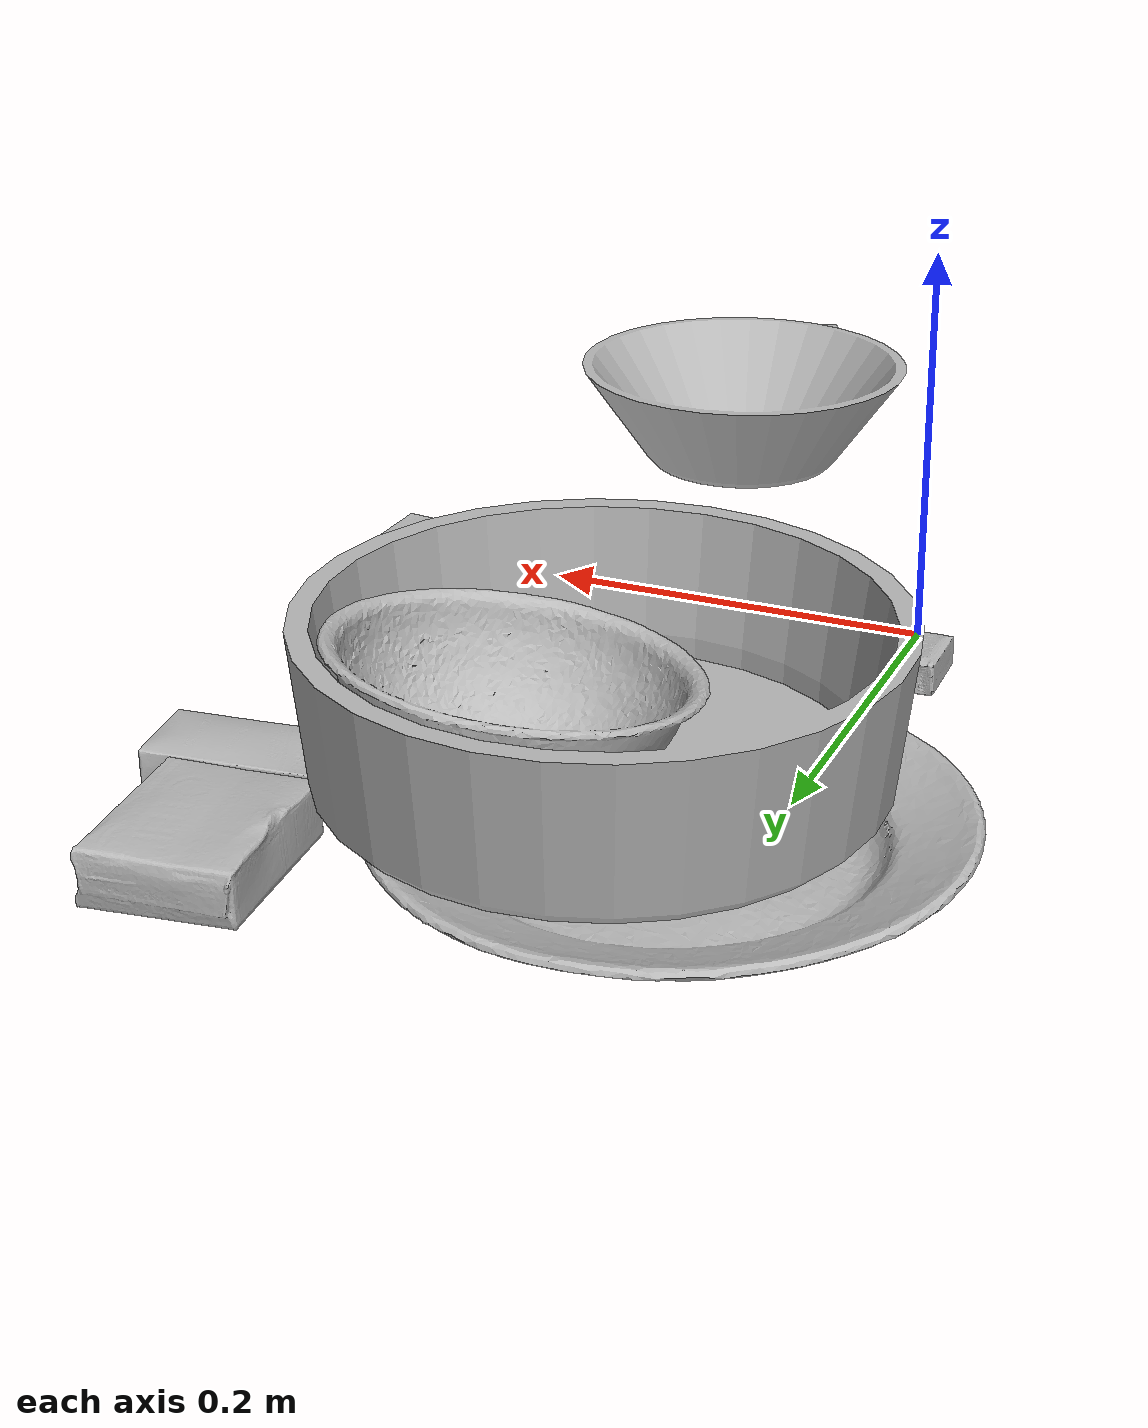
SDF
<sdf version="1.4">
  <world name="default">
    <light name="light1" type="point">
      <pose>0 0 1 0 0 0</pose>
      <diffuse>3 3 3 1</diffuse>
      <specular>3 3 3 1</specular>
    </light>
    <light name="light2" type="point">
      <pose>0 0.5 2 0 0 0</pose>
      <diffuse>1 1 1 1</diffuse>
      <specular>1 1 1 1</specular>
    </light>
    <light name="light3" type="point">
      <pose>0 0.5 2 0 0 0</pose>
      <diffuse>3 3 3 1</diffuse>
      <specular>3 3 3 1</specular>
    </light>
    <scene>
      <ambient>0.7 0.7 0.7</ambient>
    </scene>
    <model name="box1">
      <link name="link_box1">
        <collision name="default">
          <geometry>
            <mesh>
              <uri>model://gelatin_box/collision_meshes/collision.obj</uri>
              <scale>1.0 1.0 1.0</scale>
            </mesh>
          </geometry>
          <surface>
            <friction>
              <ode>
                <mu>0.5</mu>
                <mu2>0.5</mu2>
              </ode>
            </friction>
          <contact>
        <ode>
            <max_vel>0</max_vel>
            <min_depth>0.0001</min_depth>
            <kp>1e8</kp>
        </ode>
    </contact></surface>
        </collision>
        <visual name="default">
          <geometry>
            <mesh>
              <uri>model://gelatin_box/visual_meshes/visual.dae</uri>
              <scale>1.0 1.0 1.0</scale>
            </mesh>
          </geometry>
        </visual>
        <inertial>
          <mass>0.24885821342468262</mass>
          <pose>0.0004319618456065655 0.00011156872642459348 -0.0003640321083366871 -0.0010503721884538221 -0.004755817759936981 0.016440553883063976</pose>
          <inertia>
            <ixx>0.0001756736</ixx>
            <iyy>0.00012548274</iyy>
            <izz>0.00026741438</izz>
            <ixy>0</ixy>
            <ixz>0</ixz>
            <iyz>0</iyz>
          </inertia>
        </inertial>
      </link>
      <pose>0.20766961574554443 0.35294264554977417 0.015168312005698681 0.005596373977225117 -0.007303407662458258 -3.06418305936693</pose>
    </model>
    <model name="box11">
      <link name="link_box11">
        <collision name="default">
          <geometry>
            <mesh>
              <uri>model://pudding_box/collision_meshes/collision.obj</uri>
              <scale>0.5 0.5 0.5</scale>
            </mesh>
          </geometry>
          <surface>
            <friction>
              <ode>
                <mu>0.5</mu>
                <mu2>0.5</mu2>
              </ode>
            </friction>
          <contact>
        <ode>
            <max_vel>0</max_vel>
            <min_depth>0.0001</min_depth>
            <kp>1e8</kp>
        </ode>
    </contact></surface>
        </collision>
        <visual name="default">
          <geometry>
            <mesh>
              <uri>model://pudding_box/visual_meshes/visual.dae</uri>
              <scale>0.5 0.5 0.5</scale>
            </mesh>
          </geometry>
        </visual>
        <inertial>
          <mass>0.031047143042087555</mass>
          <pose>0.00024474109522998333 0.00040339428232982755 -0.0002594413817860186 0.005213102716306955 -0.006603798272123425 0.020079828883677098</pose>
          <inertia>
            <ixx>8.774299e-06</ixx>
            <iyy>5.903411e-06</iyy>
            <izz>1.2957546e-05</izz>
            <ixy>0</ixy>
            <ixz>0</ixz>
            <iyz>0</iyz>
          </inertia>
        </inertial>
      </link>
      <pose>0.2678842842578888 0.016030216589570045 0.009862903505563736 0.022348509880459454 -0.011391723566949927 -1.630748161806972</pose>
    </model>
    <model name="box2">
      <link name="link_box2">
        <collision name="default">
          <geometry>
            <mesh>
              <uri>model://rubiks_cube/collision_meshes/collision.obj</uri>
              <scale>1.0 1.0 1.0</scale>
            </mesh>
          </geometry>
          <surface>
            <friction>
              <ode>
                <mu>0.5</mu>
                <mu2>0.5</mu2>
              </ode>
            </friction>
          <contact>
        <ode>
            <max_vel>0</max_vel>
            <min_depth>0.0001</min_depth>
            <kp>1e8</kp>
        </ode>
    </contact></surface>
        </collision>
        <visual name="default">
          <geometry>
            <mesh>
              <uri>model://rubiks_cube/visual_meshes/visual.dae</uri>
              <scale>1.0 1.0 1.0</scale>
            </mesh>
          </geometry>
        </visual>
        <inertial>
          <mass>0.2106715589761734</mass>
          <pose>2.6721041649580002e-05 5.2569666877388954e-05 -7.264316536748083e-06 -0.05467273700930805 -0.09814071961497198 -0.03445608496414611</pose>
          <inertia>
            <ixx>0.0001164102</ixx>
            <iyy>0.000115867326</iyy>
            <izz>0.00011737483</izz>
            <ixy>0</ixy>
            <ixz>0</ixz>
            <iyz>0</iyz>
          </inertia>
        </inertial>
      </link>
      <pose>0.03977452218532562 0.09865930676460266 0.02867896854877472 -5.707583817426577e-06 -9.921736923413306e-07 -0.15997616615516252</pose>
    </model>
    <model name="box21">
      <link name="link_box21">
        <collision name="default">
          <geometry>
            <mesh>
              <uri>model://wood_block/collision_meshes/collision.obj</uri>
              <scale>0.5 0.5 0.5</scale>
            </mesh>
          </geometry>
          <surface>
            <friction>
              <ode>
                <mu>0.5</mu>
                <mu2>0.5</mu2>
              </ode>
            </friction>
          <contact>
        <ode>
            <max_vel>0</max_vel>
            <min_depth>0.0001</min_depth>
            <kp>1e8</kp>
        </ode>
    </contact></surface>
        </collision>
        <visual name="default">
          <geometry>
            <mesh>
              <uri>model://wood_block/visual_meshes/visual.dae</uri>
              <scale>0.5 0.5 0.5</scale>
            </mesh>
          </geometry>
        </visual>
        <inertial>
          <mass>0.146076962351799</mass>
          <pose>-2.9066577553749084e-06 -0.000285404734313488 0.00013204291462898254 -0.052208177866913126 -0.0051926955252411455 -0.006861378006552687</pose>
          <inertia>
            <ixx>4.8868267e-05</ixx>
            <iyy>0.00015437487</iyy>
            <izz>0.00015379742</izz>
            <ixy>0</ixy>
            <ixz>0</ixz>
            <iyz>0</iyz>
          </inertia>
        </inertial>
      </link>
      <pose>0.1994464248418808 -0.3271580636501312 0.02262926660478115 -0.005208422429872072 0.005718752771808813 0.4678297652716863</pose>
    </model>
    <model name="box3">
      <link name="link_box3">
        <collision name="default">
          <geometry>
            <mesh>
              <uri>model://cracker_box/collision_meshes/collision.obj</uri>
              <scale>0.25 0.25 0.25</scale>
            </mesh>
          </geometry>
          <surface>
            <friction>
              <ode>
                <mu>0.5</mu>
                <mu2>0.5</mu2>
              </ode>
            </friction>
          <contact>
        <ode>
            <max_vel>0</max_vel>
            <min_depth>0.0001</min_depth>
            <kp>1e8</kp>
        </ode>
    </contact></surface>
        </collision>
        <visual name="default">
          <geometry>
            <mesh>
              <uri>model://cracker_box/visual_meshes/visual.dae</uri>
              <scale>0.25 0.25 0.25</scale>
            </mesh>
          </geometry>
        </visual>
        <inertial>
          <mass>0.0398951955139637</mass>
          <pose>0.0002366032567806542 6.358561950037256e-05 -0.0004257383698131889 -0.00031620768741309833 -0.011106487737478729 0.0025467957005107203</pose>
          <inertia>
            <ixx>6.342223e-06</ixx>
            <iyy>1.0472255e-05</iyy>
            <izz>1.494487e-05</izz>
            <ixy>0</ixy>
            <ixz>0</ixz>
            <iyz>0</iyz>
          </inertia>
        </inertial>
      </link>
      <pose>-0.00042321550427004695 0.05059809610247612 0.009137929417192936 -0.0005433626592362842 -0.0003469603076881018 0.02547334013531394</pose>
    </model>
    <model name="box31">
      <link name="link_box31">
        <collision name="default">
          <geometry>
            <mesh>
              <uri>model://sugar_box/collision_meshes/collision.obj</uri>
              <scale>0.5 0.5 0.5</scale>
            </mesh>
          </geometry>
          <surface>
            <friction>
              <ode>
                <mu>0.5</mu>
                <mu2>0.5</mu2>
              </ode>
            </friction>
          <contact>
        <ode>
            <max_vel>0</max_vel>
            <min_depth>0.0001</min_depth>
            <kp>1e8</kp>
        </ode>
    </contact></surface>
        </collision>
        <visual name="default">
          <geometry>
            <mesh>
              <uri>model://sugar_box/visual_meshes/visual.dae</uri>
              <scale>0.5 0.5 0.5</scale>
            </mesh>
          </geometry>
        </visual>
        <inertial>
          <mass>0.051384337246418</mass>
          <pose>0.0005171863595023751 1.924554817378521e-05 -0.00018182402709499002 -0.00040462574757428057 0.0010506634050244472 0.0026153787892360275</pose>
          <inertia>
            <ixx>1.070332e-05</ixx>
            <iyy>3.4595334e-05</iyy>
            <izz>4.1414743e-05</izz>
            <ixy>0</ixy>
            <ixz>0</ixz>
            <iyz>0</iyz>
          </inertia>
        </inertial>
      </link>
      <pose>0.22944381833076477 0.27613675594329834 0.011399307288229465 0.000774453311058429 -0.02343298341091712 0.1453017994512768</pose>
    </model>
    <model name="plate1">
      <link name="link_plate1">
        <collision name="default">
          <geometry>
            <mesh>
              <uri>model://plate/collision_meshes/collision.obj</uri>
              <scale>1.0 1.0 1.0</scale>
            </mesh>
          </geometry>
          <surface>
            <friction>
              <ode>
                <mu>0.5</mu>
                <mu2>0.5</mu2>
              </ode>
            </friction>
          <contact>
        <ode>
            <max_vel>0</max_vel>
            <min_depth>0.0001</min_depth>
            <kp>1e8</kp>
        </ode>
    </contact></surface>
        </collision>
        <visual name="default">
          <geometry>
            <mesh>
              <uri>model://plate/visual_meshes/visual.dae</uri>
              <scale>1.0 1.0 1.0</scale>
            </mesh>
          </geometry>
        </visual>
        <inertial>
          <mass>0.18845537304878235</mass>
          <pose>-0.0006044640904292464 0.00027825849247165024 -0.0010561994276940823 0.0022188128524267426 -0.0032254640251278745 0.45260123674794867</pose>
          <inertia>
            <ixx>0.0008815983</ixx>
            <iyy>0.00087316614</iyy>
            <izz>0.001724274</izz>
            <ixy>0</ixy>
            <ixz>0</ixz>
            <iyz>0</iyz>
          </inertia>
        </inertial>
      </link>
      <pose>0.03129393607378006 0.26794588565826416 0.013733964413404465 -5.5126330151664756e-05 -7.69151780100756e-05 2.772942601100065</pose>
    </model>
    <model name="bowl1">
      <link name="link_bowl1">
        <collision name="default">
          <geometry>
            <mesh>
              <uri>model://bowl_a/collision_meshes/collision.obj</uri>
              <scale>1.0 1.0 1.0</scale>
            </mesh>
          </geometry>
          <surface>
            <friction>
              <ode>
                <mu>0.5</mu>
                <mu2>0.5</mu2>
              </ode>
            </friction>
          <contact>
        <ode>
            <max_vel>0</max_vel>
            <min_depth>0.0001</min_depth>
            <kp>1e8</kp>
        </ode>
    </contact></surface>
        </collision>
        <visual name="default">
          <geometry>
            <mesh>
              <uri>model://bowl_a/visual_meshes/visual.dae</uri>
              <scale>1.0 1.0 1.0</scale>
            </mesh>
          </geometry>
        </visual>
        <inertial>
          <mass>0.46761196851730347</mass>
          <pose>0.0002786737459246069 4.731199442176148e-05 -0.0013765295734629035 -0.0009805421566516771 -0.0010938164969012795 -0.19123134440759623</pose>
          <inertia>
            <ixx>0.0013313128</ixx>
            <iyy>0.0013394863</iyy>
            <izz>0.0023677913</izz>
            <ixy>0</ixy>
            <ixz>0</ixz>
            <iyz>0</iyz>
          </inertia>
        </inertial>
      </link>
      <pose>0.17368245124816895 -0.2167096734046936 0.030382994562387466 -8.648008891336802e-09 -5.435627777298779e-09 -1.2705822210645223</pose>
    </model>
    <model name="plate2">
      <link name="link_plate2">
        <collision name="default">
          <geometry>
            <mesh>
              <uri>model://pan_tefal/collision_meshes/collision.obj</uri>
              <scale>1.0 1.0 1.0</scale>
            </mesh>
          </geometry>
          <surface>
            <friction>
              <ode>
                <mu>0.5</mu>
                <mu2>0.5</mu2>
              </ode>
            </friction>
          <contact>
        <ode>
            <max_vel>0</max_vel>
            <min_depth>0.0001</min_depth>
            <kp>1e8</kp>
        </ode>
    </contact></surface>
        </collision>
        <visual name="default">
          <geometry>
            <mesh>
              <uri>model://pan_tefal/visual_meshes/visual.dae</uri>
              <scale>1.0 1.0 1.0</scale>
            </mesh>
          </geometry>
        </visual>
        <inertial>
          <mass>0.7360396385192871</mass>
          <pose>-0.00018002057913690805 3.2791922421893105e-05 -0.00851493515074253 0.0008190284364517867 -0.0003301440136962699 -0.3318532577359739</pose>
          <inertia>
            <ixx>0.0050808466</ixx>
            <iyy>0.005113603</iyy>
            <izz>0.00935286</izz>
            <ixy>0</ixy>
            <ixz>0</ixz>
            <iyz>0</iyz>
          </inertia>
        </inertial>
      </link>
      <pose>0.06751846522092819 0.25419744849205017 0.06395678967237473 -0.013538321390637358 0.0022315036723877663 0.9574766417693866</pose>
    </model>
    <model name="bowl2">
      <link name="link_bowl2">
        <collision name="default">
          <geometry>
            <mesh>
              <uri>model://bowl/collision_meshes/collision.obj</uri>
              <scale>1.0 1.0 1.0</scale>
            </mesh>
          </geometry>
          <surface>
            <friction>
              <ode>
                <mu>0.5</mu>
                <mu2>0.5</mu2>
              </ode>
            </friction>
          <contact>
        <ode>
            <max_vel>0</max_vel>
            <min_depth>0.0001</min_depth>
            <kp>1e8</kp>
        </ode>
    </contact></surface>
        </collision>
        <visual name="default">
          <geometry>
            <mesh>
              <uri>model://bowl/visual_meshes/visual.dae</uri>
              <scale>1.0 1.0 1.0</scale>
            </mesh>
          </geometry>
        </visual>
        <inertial>
          <mass>0.11974068731069565</mass>
          <pose>0.00020445311383809894 -0.0010302052833139896 -0.0008042640401981771 -0.015764214972767723 0.014546668027170537 0.7140316235505751</pose>
          <inertia>
            <ixx>0.00027505384</ixx>
            <iyy>0.000268908</iyy>
            <izz>0.00046273507</izz>
            <ixy>0</ixy>
            <ixz>0</ixz>
            <iyz>0</iyz>
          </inertia>
        </inertial>
      </link>
      <pose>0.09433495253324509 0.2929222285747528 0.06742316484451294 -0.15216276599183695 0.0032230261739364533 2.466895473619367</pose>
    </model>
  <physics type="ode">
      <max_contacts>50</max_contacts>
      <ode>
        <solver>
          <type>quick</type>
          <iters>75</iters>
        </solver>
        <constraints>
          <contact_max_correcting_vel>0</contact_max_correcting_vel>
          <contact_surface_layer>0</contact_surface_layer>
        </constraints>
      </ode>
    </physics></world>
</sdf>
